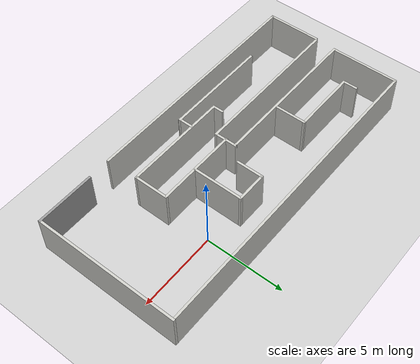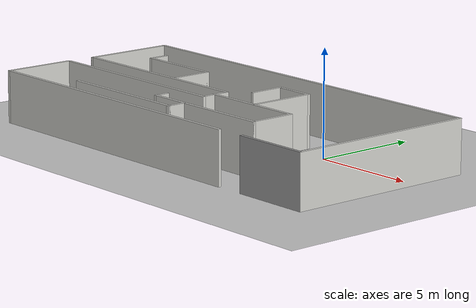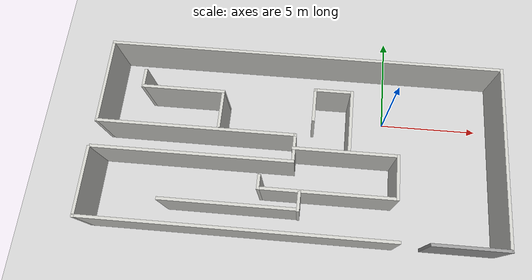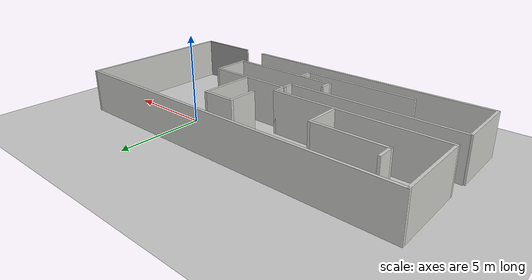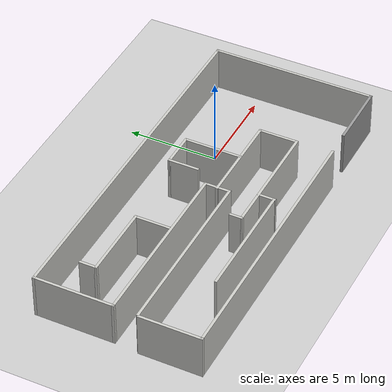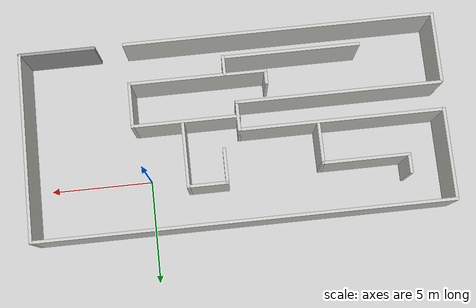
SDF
<sdf version="1.7">
 <world name="default">
  <light name="sun" type="directional">
   <pose>0 0 10 0 -0 0</pose>
   <diffuse>0.8 0.8 0.8 1</diffuse>
   <specular>0.2 0.2 0.2 1</specular>
   <attenuation>
    <range>1000</range>
    <constant>0.9</constant>
    <linear>0.01</linear>
    <quadratic>0.001</quadratic>
   </attenuation>
   <direction>-0.5 0.1 -0.9</direction>
   <spot><inner_angle>0</inner_angle><outer_angle>0</outer_angle><falloff>0</falloff></spot>
  </light>
  <model name="ground_plane">
   <static>1</static>
   <link name="link">
    <collision name="collision">
     <geometry><plane><normal>0 0 1</normal><size>100 100</size></plane></geometry>
     <surface><friction><ode><mu>100</mu><mu2>50</mu2></ode></friction></surface>
    </collision>
    <visual name="visual">
     <cast_shadows>0</cast_shadows>
     <geometry><plane><normal>0 0 1</normal><size>100 100</size></plane></geometry>
     <material>
      <script><uri>file://media/materials/scripts/gazebo.material</uri><name>Gazebo/Grey</name></script>
     </material>
    </visual>
   </link>
  </model>
  <gravity>0 0 -9.8</gravity>
  <magnetic_field>6e-06 2.3e-05 -4.2e-05</magnetic_field>
  <atmosphere type="adiabatic"/>
  <physics type="ode">
   <max_step_size>0.001</max_step_size>
   <real_time_factor>1</real_time_factor>
   <real_time_update_rate>1000</real_time_update_rate>
  </physics>
  <scene><ambient>0.4 0.4 0.4 1</ambient><background>0.7 0.7 0.7 1</background><shadows>1</shadows></scene>
  <audio><device>default</device></audio>
  <spherical_coordinates>
   <surface_model>EARTH_WGS84</surface_model>
   <latitude_deg>0</latitude_deg>
   <longitude_deg>0</longitude_deg>
   <elevation>0</elevation>
   <heading_deg>0</heading_deg>
  </spherical_coordinates>
  <model name="house">
   <pose>-4.41636 -1.94721 0 0 -0 0</pose>
   <link name="Wall_0">
    <collision name="Wall_0_Collision">
     <geometry><box><size>3.75 0.15 2.5</size></box></geometry>
     <pose>0 0 1.25 0 -0 0</pose>
    </collision>
    <visual name="Wall_0_Visual">
     <pose>0 0 1.25 0 -0 0</pose>
     <geometry><box><size>3.75 0.15 2.5</size></box></geometry>
     <material>
      <script><uri>file://media/materials/scripts/gazebo.material</uri><name>Gazebo/Grey</name></script>
      <ambient>1 1 1 1</ambient>
     </material>
     <meta><layer>0</layer></meta>
    </visual>
    <pose>8.29846 -4.53912 0 0 -0 0</pose>
   </link>
   <link name="Wall_11">
    <collision name="Wall_11_Collision">
     <geometry><box><size>15.25 0.15 2.5</size></box></geometry>
     <pose>0 0 1.25 0 -0 0</pose>
    </collision>
    <visual name="Wall_11_Visual">
     <pose>0 0 1.25 0 -0 0</pose>
     <geometry><box><size>15.25 0.15 2.5</size></box></geometry>
     <material>
      <script><uri>file://media/materials/scripts/gazebo.material</uri><name>Gazebo/CeilingTiled</name></script>
      <ambient>1 1 1 1</ambient>
     </material>
     <meta><layer>0</layer></meta>
    </visual>
    <pose>-2.54846 -4.56088 0 0 -0 3.14159</pose>
   </link>
   <link name="Wall_12">
    <collision name="Wall_12_Collision">
     <geometry><box><size>3.5 0.15 2.5</size></box></geometry>
     <pose>0 0 1.25 0 -0 0</pose>
    </collision>
    <visual name="Wall_12_Visual">
     <pose>0 0 1.25 0 -0 0</pose>
     <geometry><box><size>3.5 0.15 2.5</size></box></geometry>
     <material>
      <script><uri>file://media/materials/scripts/gazebo.material</uri><name>Gazebo/CeilingTiled</name></script>
      <ambient>1 1 1 1</ambient>
     </material>
     <meta><layer>0</layer></meta>
    </visual>
    <pose>-10.0985 -2.88588 0 0 -0 1.5708</pose>
   </link>
   <link name="Wall_14">
    <collision name="Wall_14_Collision">
     <geometry><box><size>2 0.15 2.5</size></box></geometry>
     <pose>0 0 1.25 0 -0 0</pose>
    </collision>
    <visual name="Wall_14_Visual">
     <pose>0 0 1.25 0 -0 0</pose>
     <geometry><box><size>2 0.15 2.5</size></box></geometry>
     <material>
      <script><uri>file://media/materials/scripts/gazebo.material</uri><name>Gazebo/CeilingTiled</name></script>
      <ambient>1 1 1 1</ambient>
     </material>
     <meta><layer>0</layer></meta>
    </visual>
    <pose>-3.94629 1.29455 0 0 -0 1.5708</pose>
   </link>
   <link name="Wall_15">
    <collision name="Wall_15_Collision">
     <geometry><box><size>4.25 0.15 2.5</size></box></geometry>
     <pose>0 0 1.25 0 -0 0</pose>
    </collision>
    <visual name="Wall_15_Visual">
     <pose>0 0 1.25 0 -0 0</pose>
     <geometry><box><size>4.25 0.15 2.5</size></box></geometry>
     <material>
      <script><uri>file://media/materials/scripts/gazebo.material</uri><name>Gazebo/CeilingTiled</name></script>
      <ambient>1 1 1 1</ambient>
     </material>
     <meta><layer>0</layer></meta>
    </visual>
    <pose>-5.99629 2.21955 0 0 -0 3.14159</pose>
   </link>
   <link name="Wall_16">
    <collision name="Wall_16_Collision">
     <geometry><box><size>1 0.15 2.5</size></box></geometry>
     <pose>0 0 1.25 0 -0 0</pose>
    </collision>
    <visual name="Wall_16_Visual">
     <pose>0 0 1.25 0 -0 0</pose>
     <geometry><box><size>1 0.15 2.5</size></box></geometry>
     <material>
      <script><uri>file://media/materials/scripts/gazebo.material</uri><name>Gazebo/CeilingTiled</name></script>
      <ambient>1 1 1 1</ambient>
     </material>
     <meta><layer>0</layer></meta>
    </visual>
    <pose>-8.04629 2.64455 0 0 -0 1.5708</pose>
   </link>
   <link name="Wall_18">
    <collision name="Wall_18_Collision">
     <geometry><box><size>5.25 0.15 2.5</size></box></geometry>
     <pose>0 0 1.25 0 -0 0</pose>
    </collision>
    <visual name="Wall_18_Visual">
     <pose>0 0 1.25 0 -0 0</pose>
     <geometry><box><size>5.25 0.15 2.5</size></box></geometry>
     <material>
      <script><uri>file://media/materials/scripts/gazebo.material</uri><name>Gazebo/CeilingTiled</name></script>
      <ambient>1 1 1 1</ambient>
     </material>
     <meta><layer>0</layer></meta>
    </visual>
    <pose>2.36023 -0.465232 0 0 -0 0</pose>
   </link>
   <link name="Wall_19">
    <collision name="Wall_19_Collision">
     <geometry><box><size>2.25 0.15 2.5</size></box></geometry>
     <pose>0 0 1.25 0 -0 0</pose>
    </collision>
    <visual name="Wall_19_Visual">
     <pose>0 0 1.25 0 -0 0</pose>
     <geometry><box><size>2.25 0.15 2.5</size></box></geometry>
     <material>
      <script><uri>file://media/materials/scripts/gazebo.material</uri><name>Gazebo/CeilingTiled</name></script>
      <ambient>1 1 1 1</ambient>
     </material>
     <meta><layer>0</layer></meta>
    </visual>
    <pose>4.91024 -1.51523 0 0 -0 -1.5708</pose>
   </link>
   <link name="Wall_20">
    <collision name="Wall_20_Collision">
     <geometry><box><size>6.75 0.15 2.5</size></box></geometry>
     <pose>0 0 1.25 0 -0 0</pose>
    </collision>
    <visual name="Wall_20_Visual">
     <pose>0 0 1.25 0 -0 0</pose>
     <geometry><box><size>6.75 0.15 2.5</size></box></geometry>
     <material>
      <script><uri>file://media/materials/scripts/gazebo.material</uri><name>Gazebo/CeilingTiled</name></script>
      <ambient>1 1 1 1</ambient>
     </material>
     <meta><layer>0</layer></meta>
    </visual>
    <pose>1.61024 -2.56523 0 0 -0 3.14159</pose>
   </link>
   <link name="Wall_21">
    <collision name="Wall_21_Collision">
     <geometry><box><size>0.75 0.15 2.5</size></box></geometry>
     <pose>0 0 1.25 0 -0 0</pose>
    </collision>
    <visual name="Wall_21_Visual">
     <pose>0 0 1.25 0 -0 0</pose>
     <geometry><box><size>0.75 0.15 2.5</size></box></geometry>
     <material>
      <script><uri>file://media/materials/scripts/gazebo.material</uri><name>Gazebo/CeilingTiled</name></script>
      <ambient>1 1 1 1</ambient>
     </material>
     <meta><layer>0</layer></meta>
    </visual>
    <pose>-1.68976 -2.26523 0 0 -0 1.5708</pose>
   </link>
   <link name="Wall_23">
    <collision name="Wall_23_Collision">
     <geometry><box><size>3.25 0.15 2.5</size></box></geometry>
     <pose>0 0 1.25 0 -0 0</pose>
    </collision>
    <visual name="Wall_23_Visual">
     <pose>0 0 1.25 0 -0 0</pose>
     <geometry><box><size>3.25 0.15 2.5</size></box></geometry>
     <material>
      <script><uri>file://media/materials/scripts/gazebo.material</uri><name>Gazebo/CeilingTiled</name></script>
      <ambient>1 1 1 1</ambient>
     </material>
     <meta><layer>0</layer></meta>
    </visual>
    <pose>2.52328 1.13694 0 0 -0 1.5708</pose>
   </link>
   <link name="Wall_24">
    <collision name="Wall_24_Collision">
     <geometry><box><size>2 0.15 2.5</size></box></geometry>
     <pose>0 0 1.25 0 -0 0</pose>
    </collision>
    <visual name="Wall_24_Visual">
     <pose>0 0 1.25 0 -0 0</pose>
     <geometry><box><size>2 0.15 2.5</size></box></geometry>
     <material>
      <script><uri>file://media/materials/scripts/gazebo.material</uri><name>Gazebo/CeilingTiled</name></script>
      <ambient>1 1 1 1</ambient>
     </material>
     <meta><layer>0</layer></meta>
    </visual>
    <pose>1.59828 2.68694 0 0 -0 3.14159</pose>
   </link>
   <link name="Wall_25">
    <collision name="Wall_25_Collision">
     <geometry><box><size>1.75 0.15 2.5</size></box></geometry>
     <pose>0 0 1.25 0 -0 0</pose>
    </collision>
    <visual name="Wall_25_Visual">
     <pose>0 0 1.25 0 -0 0</pose>
     <geometry><box><size>1.75 0.15 2.5</size></box></geometry>
     <material>
      <script><uri>file://media/materials/scripts/gazebo.material</uri><name>Gazebo/CeilingTiled</name></script>
      <ambient>1 1 1 1</ambient>
     </material>
     <meta><layer>0</layer></meta>
    </visual>
    <pose>0.673279 1.88694 0 0 -0 -1.5708</pose>
   </link>
   <link name="Wall_27">
    <collision name="Wall_27_Collision">
     <geometry><box><size>1.00435 0.15 2.5</size></box></geometry>
     <pose>0 0 1.25 0 -0 0</pose>
    </collision>
    <visual name="Wall_27_Visual">
     <pose>0 0 1.25 0 -0 0</pose>
     <geometry><box><size>1.00435 0.15 2.5</size></box></geometry>
     <material>
      <script><uri>file://media/materials/scripts/gazebo.material</uri><name>Gazebo/CeilingTiled</name></script>
      <ambient>1 1 1 1</ambient>
     </material>
     <meta><layer>0</layer></meta>
    </visual>
    <pose>0.279801 -3.03154 0 0 -0 -1.5708</pose>
   </link>
   <link name="Wall_28">
    <collision name="Wall_28_Collision">
     <geometry><box><size>6.75 0.15 2.5</size></box></geometry>
     <pose>0 0 1.25 0 -0 0</pose>
    </collision>
    <visual name="Wall_28_Visual">
     <pose>0 0 1.25 0 -0 0</pose>
     <geometry><box><size>6.75 0.15 2.5</size></box></geometry>
     <material>
      <script><uri>file://media/materials/scripts/gazebo.material</uri><name>Gazebo/CeilingTiled</name></script>
      <ambient>1 1 1 1</ambient>
     </material>
     <meta><layer>0</layer></meta>
    </visual>
    <pose>-3.0202 -3.43262 0 0 -0 3.14159</pose>
   </link>
   <link name="Wall_3">
    <collision name="Wall_3_Collision">
     <geometry><box><size>9.25 0.15 2.5</size></box></geometry>
     <pose>0 0 1.25 0 -0 0</pose>
    </collision>
    <visual name="Wall_3_Visual">
     <pose>0 0 1.25 0 -0 0</pose>
     <geometry><box><size>9.25 0.15 2.5</size></box></geometry>
     <material>
      <script><uri>file://media/materials/scripts/gazebo.material</uri><name>Gazebo/CeilingTiled</name></script>
      <ambient>1 1 1 1</ambient>
     </material>
     <meta><layer>0</layer></meta>
    </visual>
    <pose>10.0985 0.010883 0 0 -0 1.5708</pose>
   </link>
   <link name="Wall_4">
    <collision name="Wall_4_Collision">
     <geometry><box><size>20.25 0.15 2.5</size></box></geometry>
     <pose>0 0 1.25 0 -0 0</pose>
    </collision>
    <visual name="Wall_4_Visual">
     <pose>0 0 1.25 0 -0 0</pose>
     <geometry><box><size>20.25 0.15 2.5</size></box></geometry>
     <material>
      <script><uri>file://media/materials/scripts/gazebo.material</uri><name>Gazebo/CeilingTiled</name></script>
      <ambient>1 1 1 1</ambient>
     </material>
     <meta><layer>0</layer></meta>
    </visual>
    <pose>0.048461 4.56088 0 0 -0 3.14159</pose>
   </link>
   <link name="Wall_5">
    <collision name="Wall_5_Collision">
     <geometry><box><size>4.5 0.15 2.5</size></box></geometry>
     <pose>0 0 1.25 0 -0 0</pose>
    </collision>
    <visual name="Wall_5_Visual">
     <pose>0 0 1.25 0 -0 0</pose>
     <geometry><box><size>4.5 0.15 2.5</size></box></geometry>
     <material>
      <script><uri>file://media/materials/scripts/gazebo.material</uri><name>Gazebo/CeilingTiled</name></script>
      <ambient>1 1 1 1</ambient>
     </material>
     <meta><layer>0</layer></meta>
    </visual>
    <pose>-10.0015 2.38588 0 0 -0 -1.5708</pose>
   </link>
   <link name="Wall_6">
    <collision name="Wall_6_Collision">
     <geometry><box><size>10 0.15 2.5</size></box></geometry>
     <pose>0 0 1.25 0 -0 0</pose>
    </collision>
    <visual name="Wall_6_Visual">
     <pose>0 0 1.25 0 -0 0</pose>
     <geometry><box><size>10 0.15 2.5</size></box></geometry>
     <material>
      <script><uri>file://media/materials/scripts/gazebo.material</uri><name>Gazebo/CeilingTiled</name></script>
      <ambient>1 1 1 1</ambient>
     </material>
     <meta><layer>0</layer></meta>
    </visual>
    <pose>-5.07654 0.210883 0 0 -0 0</pose>
   </link>
   <link name="Wall_7">
    <collision name="Wall_7_Collision">
     <geometry><box><size>1.5 0.15 2.5</size></box></geometry>
     <pose>0 0 1.25 0 -0 0</pose>
    </collision>
    <visual name="Wall_7_Visual">
     <pose>0 0 1.25 0 -0 0</pose>
     <geometry><box><size>1.5 0.15 2.5</size></box></geometry>
     <material>
      <script><uri>file://media/materials/scripts/gazebo.material</uri><name>Gazebo/CeilingTiled</name></script>
      <ambient>1 1 1 1</ambient>
     </material>
     <meta><layer>0</layer></meta>
    </visual>
    <pose>-0.151539 -0.464117 0 0 -0 -1.5708</pose>
   </link>
   <link name="Wall_8">
    <collision name="Wall_8_Collision">
     <geometry><box><size>10 0.15 2.5</size></box></geometry>
     <pose>0 0 1.25 0 -0 0</pose>
    </collision>
    <visual name="Wall_8_Visual">
     <pose>0 0 1.25 0 -0 0</pose>
     <geometry><box><size>10 0.15 2.5</size></box></geometry>
     <material>
      <script><uri>file://media/materials/scripts/gazebo.material</uri><name>Gazebo/CeilingTiled</name></script>
      <ambient>1 1 1 1</ambient>
     </material>
     <meta><layer>0</layer></meta>
    </visual>
    <pose>-5.07654 -1.13912 0 0 -0 3.14159</pose>
   </link>
   <static>1</static>
  </model>
 </world>
</sdf>
